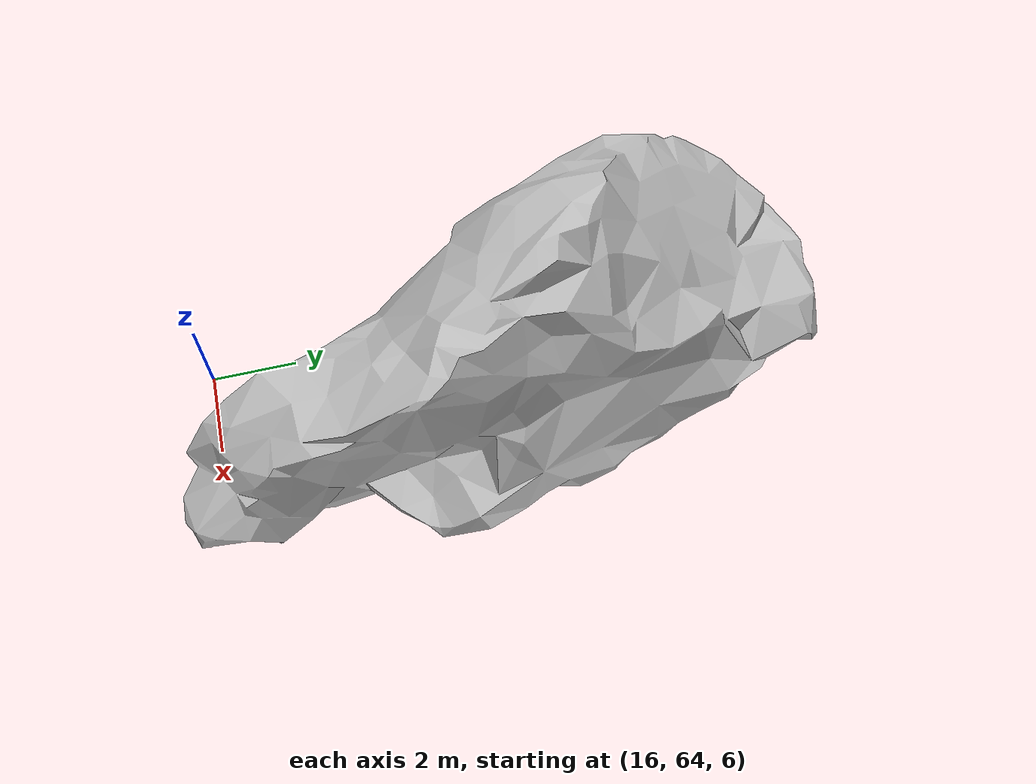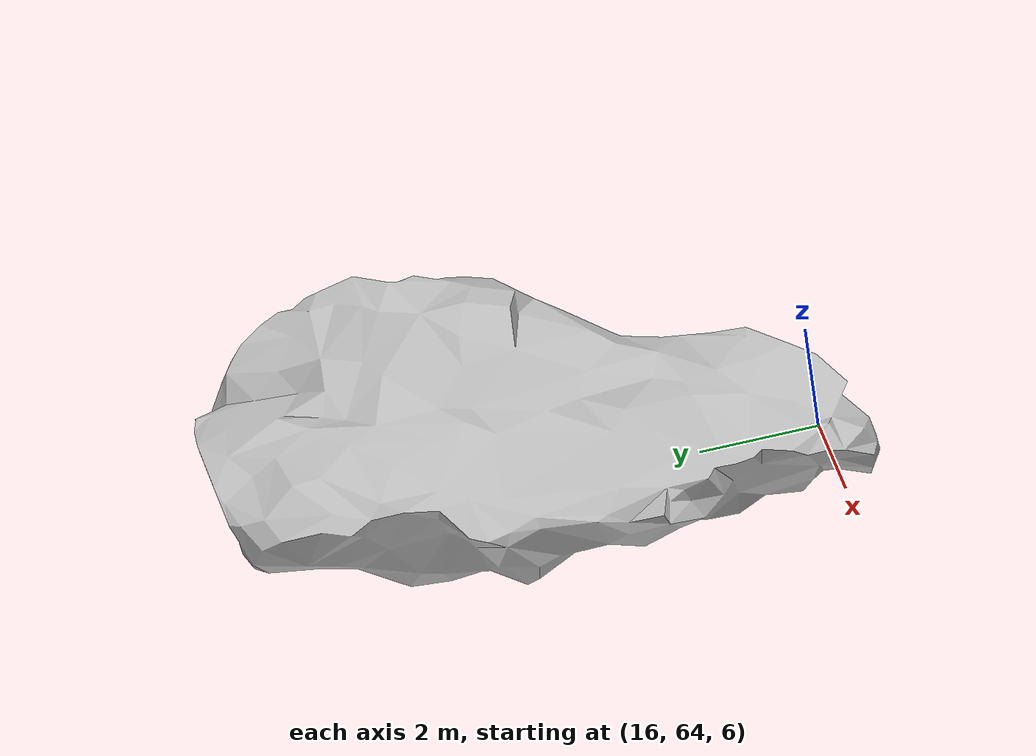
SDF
<?xml version="1.0" ?>
<sdf version="1.6">
  <model name="smars_rock_cluster">
    <static>true</static>

    <link name="rock2">
      <collision name="collision">
        <pose>19 71 9 -1.23 -1.55 0</pose>
        <geometry>
          <mesh>
            <scale>2 2 2</scale>
            <uri>model://smars_rock_5/rock5.obj</uri>
          </mesh>
        </geometry>
      </collision>
      <visual name="visual">
        <pose>19 71 9 -1.23 -1.55 0</pose>
        <geometry>
          <mesh>
            <scale>2 2 2</scale>
            <uri>model://smars_rock_5/rock5.obj</uri>
          </mesh>
        </geometry>
      </visual>
    </link>

  </model>
</sdf>
